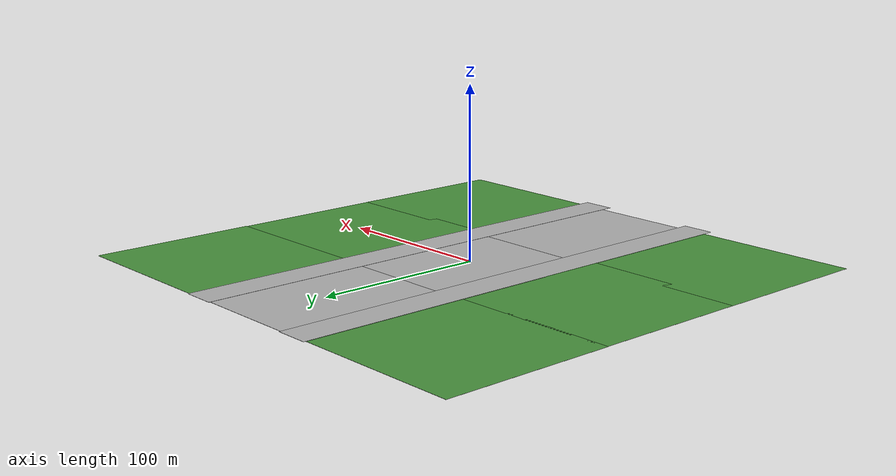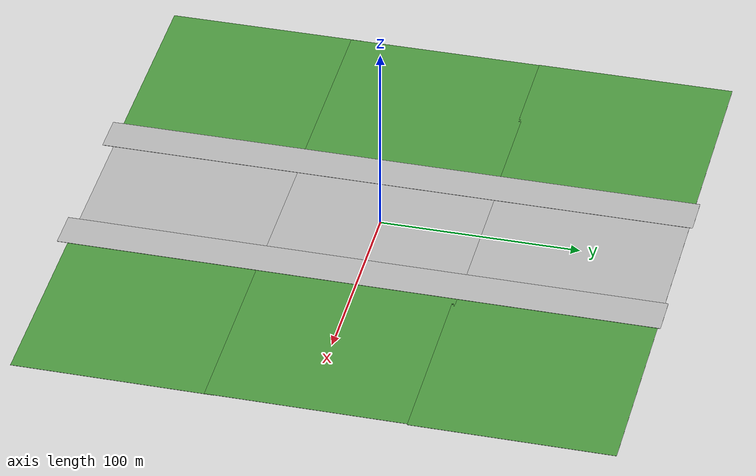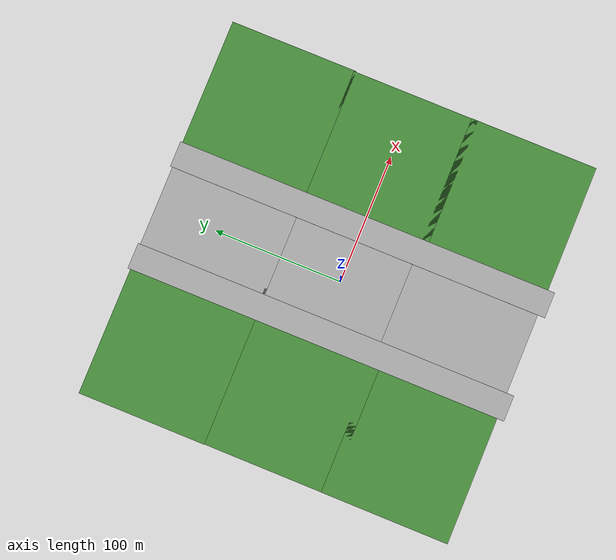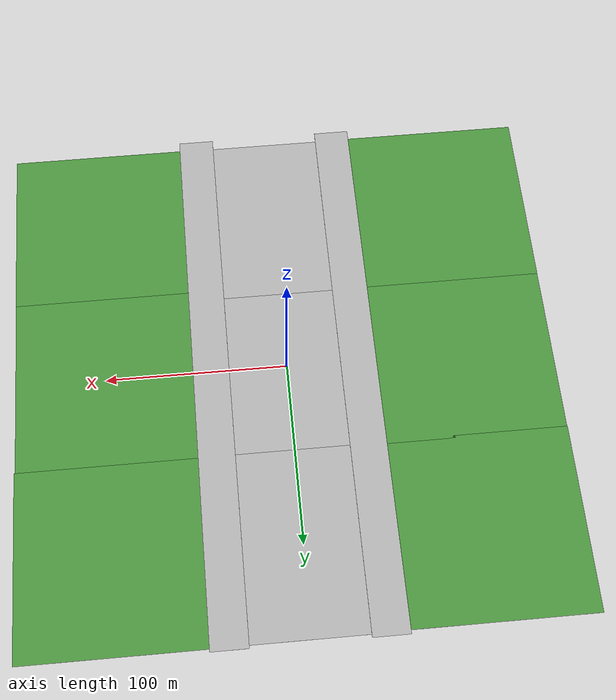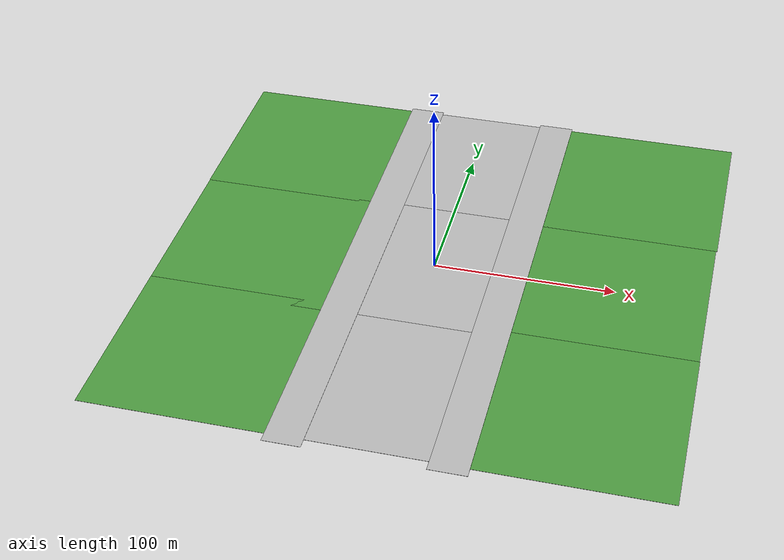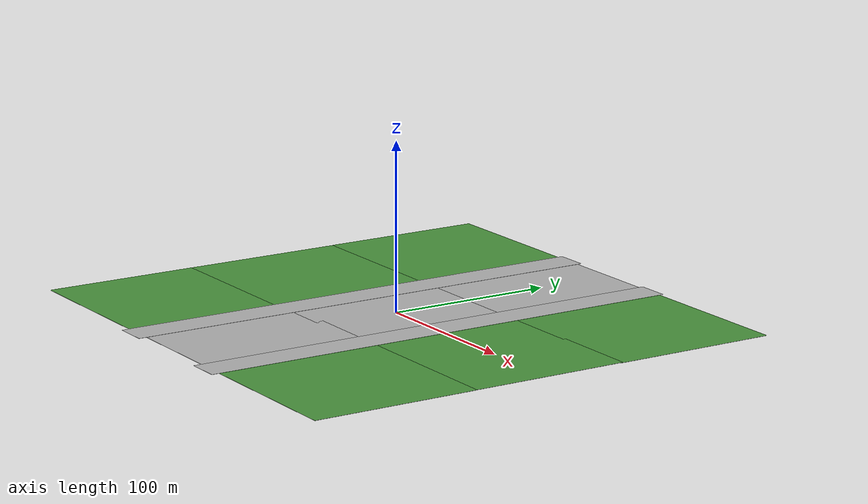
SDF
<sdf version="1.6">
 <world name="default">
  <light name="sun" type="directional">
   <pose>0 0 1e+09 0 -0 0</pose>
   <diffuse>0.7 0.7 0.7 1</diffuse>
   <specular>0.7 0.7 0.7 1</specular>
   <attenuation>
    <range>1e+09</range>
    <constant>0.9</constant>
    <linear>0.01</linear>
    <quadratic>0.001</quadratic>
   </attenuation>
   <direction>-0.5 0.1 -0.9</direction>
  </light>
  <plugin name="ros_interface_plugin" filename="librotors_gazebo_ros_interface_plugin.so"/>
  <gravity>0 0 -9.8</gravity>
  <magnetic_field>6e-06 2.3e-05 -4.2e-05</magnetic_field>
  <atmosphere type="adiabatic"/>
  <physics name="default_physics" default="0" type="ode">
   <ode>
    <solver>
     <type>quick</type>
     <iters>10</iters>
     <sor>1.4</sor>
     <use_dynamic_moi_rescaling>0</use_dynamic_moi_rescaling>
    </solver>
    <constraints>
     <cfm>0</cfm>
     <erp>0.2</erp>
     <contact_max_correcting_vel>100</contact_max_correcting_vel>
     <contact_surface_layer>0.001</contact_surface_layer>
    </constraints>
   </ode>
   <max_step_size>0.0025</max_step_size>
   <real_time_factor>1</real_time_factor>
   <real_time_update_rate>400</real_time_update_rate>
  </physics>
  <scene>
   <ambient>0.7 0.7 0.7 1</ambient>
   <background>0.7 0.7 0.7 1</background>
   <shadows>1</shadows>
   <grid>0</grid>
   <origin_visual>0</origin_visual>
   <shadows>1</shadows>
  </scene>
  <spherical_coordinates>
   <surface_model>EARTH_WGS84</surface_model>
   <latitude_deg>37.497</latitude_deg>
   <longitude_deg>127.042</longitude_deg>
   <elevation>0</elevation>
   <heading_deg>0</heading_deg>
  </spherical_coordinates>
  <model name="dirt_field">
   <static>1</static>
   <link name="link">
    <collision name="collision"><geometry><box><size>10 10 0.1</size></box></geometry></collision>
    <visual name="visual">
     <cast_shadows>0</cast_shadows>
     <geometry><box><size>20 300 0.1</size></box></geometry>
     <material>
      <script>
       <uri>model://dirt_field/materials/scripts</uri>
       <uri>model://dirt_field/materials/textures</uri>
       <name>vrc/dirt</name>
      </script>
     </material>
    </visual>
   </link>
   <pose>42 0 0.5 0 -0 0</pose>
  </model>
  <model name="dirt_field0">
   <static>1</static>
   <link name="link">
    <collision name="collision"><geometry><box><size>10 10 0.1</size></box></geometry></collision>
    <visual name="visual">
     <cast_shadows>0</cast_shadows>
     <geometry><box><size>20 300 0.1</size></box></geometry>
     <material>
      <script>
       <uri>model://dirt_field/materials/scripts</uri>
       <uri>model://dirt_field/materials/textures</uri>
       <name>vrc/dirt</name>
      </script>
     </material>
    </visual>
   </link>
   <pose>-40 0 0.5 0 -0 0</pose>
  </model>
  <model name="water_field">
   <static>1</static>
   <link name="link">
    <collision name="collision"><geometry><box><size>100 100 0.1</size></box></geometry></collision>
    <visual name="visual">
     <cast_shadows>0</cast_shadows>
     <geometry><box><size>100 100 0.1</size></box></geometry>
     <material>
      <script>
       <uri>model://water_field/materials/scripts</uri>
       <uri>model://water_field/materials/textures</uri>
       <name>vrc/water</name>
      </script>
     </material>
    </visual>
   </link>
   <pose>0.544353 0.377578 0 0 -0 0</pose>
  </model>
  <model name="water_field_0">
   <static>1</static>
   <link name="link">
    <collision name="collision"><geometry><box><size>100 100 0.1</size></box></geometry></collision>
    <visual name="visual">
     <cast_shadows>0</cast_shadows>
     <geometry><box><size>100 100 0.1</size></box></geometry>
     <material>
      <script>
       <uri>model://water_field/materials/scripts</uri>
       <uri>model://water_field/materials/textures</uri>
       <name>vrc/water</name>
      </script>
     </material>
    </visual>
   </link>
   <pose>0.60101 98.3826 0 0 -0 0</pose>
  </model>
  <model name="water_field_1">
   <static>1</static>
   <link name="link">
    <collision name="collision"><geometry><box><size>100 100 0.1</size></box></geometry></collision>
    <visual name="visual">
     <cast_shadows>0</cast_shadows>
     <geometry><box><size>100 100 0.1</size></box></geometry>
     <material>
      <script>
       <uri>model://water_field/materials/scripts</uri>
       <uri>model://water_field/materials/textures</uri>
       <name>vrc/water</name>
      </script>
     </material>
    </visual>
   </link>
   <pose>0.730751 -94.4741 0 0 -0 0</pose>
  </model>
  <model name="grass_field">
   <static>1</static>
   <link name="link">
    <collision name="collision"><geometry><box><size>100 100 0.1</size></box></geometry></collision>
    <visual name="visual">
     <cast_shadows>0</cast_shadows>
     <geometry><box><size>100 100 0.1</size></box></geometry>
     <material>
      <script>
       <uri>model://grass_field/materials/scripts</uri>
       <uri>model://grass_field/materials/textures</uri>
       <name>vrc/grass</name>
      </script>
     </material>
    </visual>
   </link>
   <pose>100.456 98.5196 0 0 -0 0</pose>
  </model>
  <model name="grass_field_0">
   <static>1</static>
   <link name="link">
    <collision name="collision"><geometry><box><size>100 100 0.1</size></box></geometry></collision>
    <visual name="visual">
     <cast_shadows>0</cast_shadows>
     <geometry><box><size>100 100 0.1</size></box></geometry>
     <material>
      <script>
       <uri>model://grass_field/materials/scripts</uri>
       <uri>model://grass_field/materials/textures</uri>
       <name>vrc/grass</name>
      </script>
     </material>
    </visual>
   </link>
   <pose>99.8405 0.212356 0 0 -0 0</pose>
  </model>
  <model name="grass_field_1">
   <static>1</static>
   <link name="link">
    <collision name="collision"><geometry><box><size>100 100 0.1</size></box></geometry></collision>
    <visual name="visual">
     <cast_shadows>0</cast_shadows>
     <geometry><box><size>100 100 0.1</size></box></geometry>
     <material>
      <script>
       <uri>model://grass_field/materials/scripts</uri>
       <uri>model://grass_field/materials/textures</uri>
       <name>vrc/grass</name>
      </script>
     </material>
    </visual>
   </link>
   <pose>100.038 -94.7662 0 0 -0 0</pose>
  </model>
  <model name="grass_field_2">
   <static>1</static>
   <link name="link">
    <collision name="collision"><geometry><box><size>100 100 0.1</size></box></geometry></collision>
    <visual name="visual">
     <cast_shadows>0</cast_shadows>
     <geometry><box><size>100 100 0.1</size></box></geometry>
     <material>
      <script>
       <uri>model://grass_field/materials/scripts</uri>
       <uri>model://grass_field/materials/textures</uri>
       <name>vrc/grass</name>
      </script>
     </material>
    </visual>
   </link>
   <pose>-98.7618 97.9263 0 0 -0 0</pose>
  </model>
  <model name="grass_field_3">
   <static>1</static>
   <link name="link">
    <collision name="collision"><geometry><box><size>100 100 0.1</size></box></geometry></collision>
    <visual name="visual">
     <cast_shadows>0</cast_shadows>
     <geometry><box><size>100 100 0.1</size></box></geometry>
     <material>
      <script>
       <uri>model://grass_field/materials/scripts</uri>
       <uri>model://grass_field/materials/textures</uri>
       <name>vrc/grass</name>
      </script>
     </material>
    </visual>
   </link>
   <pose>-98.5306 -0.709152 0 0 -0 0</pose>
  </model>
  <model name="grass_field_4">
   <static>1</static>
   <link name="link">
    <collision name="collision"><geometry><box><size>100 100 0.1</size></box></geometry></collision>
    <visual name="visual">
     <cast_shadows>0</cast_shadows>
     <geometry><box><size>100 100 0.1</size></box></geometry>
     <material>
      <script>
       <uri>model://grass_field/materials/scripts</uri>
       <uri>model://grass_field/materials/textures</uri>
       <name>vrc/grass</name>
      </script>
     </material>
    </visual>
   </link>
   <pose>-98.6133 -94.7661 0 0 -0 0</pose>
  </model>
  <audio><device>default</device></audio>
 </world>
</sdf>
